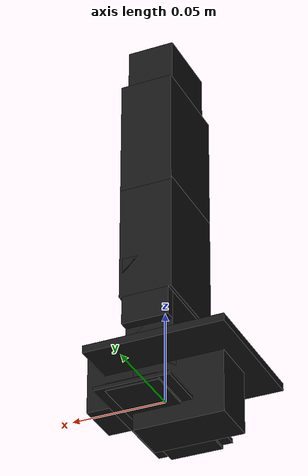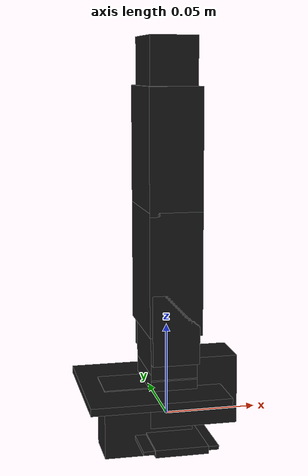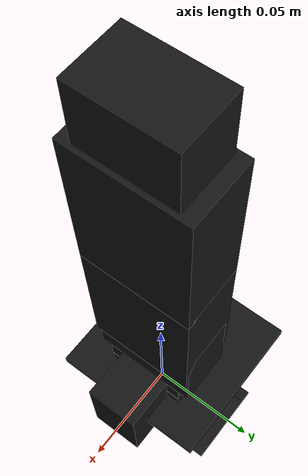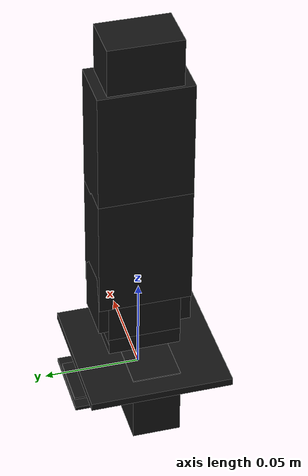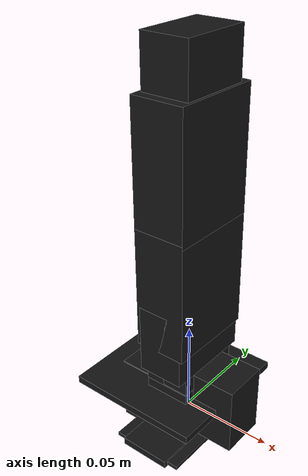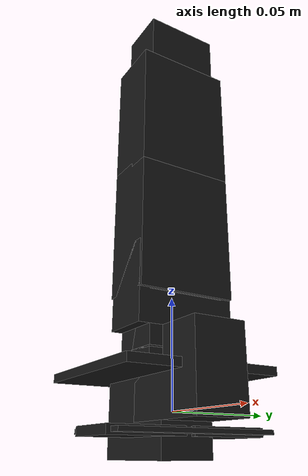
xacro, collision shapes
<?xml version="1.0"?>
<!-- Describe URDF for Turtlebot Arm -->
<robot name="turtlebot_arm" xmlns:xacro="http://ros.org/wiki/xacro">

    <!-- We can configure joints velocity limit and lower/upper limits
         to allow access to different operational areas, e.g. left handed vs. right handed robot -->
    <xacro:property name="joints_vlimit" value="1.571"/>
    <xacro:property name="pan_llimit" value="-2.617"/>
    <xacro:property name="pan_ulimit" value="2.617"/>
    <xacro:property name="shoulder_llimit" value="-2.617"/>
    <xacro:property name="shoulder_ulimit" value="2.617"/>
    <xacro:property name="elbow_llimit" value="-2.617"/>
    <xacro:property name="elbow_ulimit" value="2.617"/>
    <xacro:property name="wrist_llimit" value="-1.745"/>
    <xacro:property name="wrist_ulimit" value="1.745"/>

    <xacro:arg name="phantom_x_100" default="true"/>
    <xacro:property name="phantom_x_100" value="$(arg phantom_x_100)"/>

    <!-- Included URDF Files -->
    <xacro:include filename="$(find phantom_description)/urdf/turtlebot_arm.xacro"/>

    <xacro:include filename="$(find phantom_control)/description/physical_phantom.ros2_control.xacro"/>

    <xacro:call macro="phantom_ros2_control" name="turtlebot_arm" prefix=""/>

    <!-- As we don't have here a turtlebot base, add a base_link link as its location reference -->
    <link name="base_link"/>
     <xacro:call macro="arm_mount" name="arm_mount" parent="base_link" color="Black">
          <origin xyz="0 0 0"/>
     </xacro:call>
    <!-- Turtlebot arm macro -->
    <xacro:call macro="turtlebot_arm" parent="arm_mount_link" color="Black" gripper_color="Black"
                    pincher_gripper="true" turtlebot_gripper="false" phantom_x_100="${phantom_x_100}">
      <!-- Place the "floating" arm at the location it should be if mounted on a turtlebot,
           as pick and place and other demos assume this location -->
      <origin xyz="0 0 0"/>
    </xacro:call>
</robot>

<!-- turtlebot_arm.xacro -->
<!-- Arm description for Turtlebot Arm and PhantomX Pincher arm -->
<robot xmlns:xacro="http://ros.org/wiki/xacro">
  <xacro:include filename="$(find phantom_description)/urdf/arm_hardware.xacro"/>

  <material name="White">
    <color rgba="0.87 0.90 0.87 1.0"/>
  </material>
  <material name="Black">
    <color rgba="0.08 0.08 0.08 1.0"/>
  </material>
  <material name="Gray">
    <color rgba="0.2 0.2 0.21 1.0"/>
  </material>
  <material name="Green">
    <color rgba="0.22 0.32 0.14 1.0"/>
  </material>

  <xacro:macro name="turtlebot_arm" params="parent color pincher_gripper turtlebot_gripper gripper_color phantom_x_100 *origin">
    <link name="arm_base_link"/>
    <joint name="arm_base_joint" type="fixed">
      <xacro:insert_block name="origin"/>
      <parent link="${parent}"/>
      <child link="arm_base_link"/>
    </joint>

    <!-- fake gripper_link joint gives us a free servo!
         this makes us 5DOF and saves you $44.90
         that's a lot of coin! -->
    <link name="gripper_link"/>
    <joint name="gripper_link_joint" type="revolute">
      <origin xyz="0 0 0.112" rpy="0 -1.57 0"/>
      <parent link="arm_wrist_flex_link"/>
      <child link="gripper_link"/>
      <limit effort="30" velocity="1" lower="-3.14" upper="3.14"/>
      <axis xyz="1 0 0"/>
    </joint>

    <!-- shoulder pan joint -->
    <xacro:call macro="dynamixel_AX12_fixed" parent="arm_base_link" name="arm_shoulder_pan_servo">
      <origin xyz="0 0 0" rpy="${M_PI/2} 0 ${M_PI/2}"/>
    </xacro:call>
    <xacro:call macro="bioloid_F3_revolute" parent="arm_shoulder_pan_servo_link" name="arm_shoulder_pan" color="${color}"
                         vlimit="${joints_vlimit}" llimit="${pan_llimit}" ulimit="${pan_ulimit}">
      <origin xyz="0 ${AX12_WIDTH/2} 0" rpy="${-M_PI/2} ${M_PI/2} ${M_PI}"/>
    </xacro:call>

    <!-- shoulder lift joint -->
    <xacro:call  macro="dynamixel_AX12_fixed" parent="arm_shoulder_pan_link" name="arm_shoulder_lift_servo">
      <origin xyz="0 0 ${-AX12_HEIGHT-F10_HEIGHT+0.001}" rpy="0 ${M_PI} 0"/>
    </xacro:call>
    <xacro:call macro="bioloid_F4_revolute" parent="arm_shoulder_lift_servo_link" name="arm_shoulder_lift" color="${color}"
                         vlimit="${joints_vlimit}" llimit="${shoulder_llimit}" ulimit="${shoulder_ulimit}">
      <origin xyz="0 0 0" rpy="0 0 0"/>
    </xacro:call>
    <xacro:call macro="bioloid_F10_fixed" parent="arm_shoulder_lift_link" name="arm_shoulder_F10_0" color="${color}">
      <origin xyz="0 0 ${F4_HEIGHT+F10_HEIGHT/2}" rpy="0 0 0"/>
    </xacro:call>
    <xacro:call macro="bioloid_F10_fixed" parent="arm_shoulder_F10_0_link" name="arm_shoulder_F10_1" color="${color}">
      <origin xyz="0 0 ${F10_HEIGHT}" rpy="0 0 0"/>
    </xacro:call>
    <xacro:call macro="bioloid_F10_fixed" parent="arm_shoulder_F10_1_link" name="arm_shoulder_F10_2" color="${color}">
      <origin xyz="0 0 ${F10_HEIGHT}" rpy="0 0 0"/>
    </xacro:call>
    <xacro:call  macro="bioloid_F3_fixed" parent="arm_shoulder_F10_2_link" name="arm_shoulder_F3_0" color="${color}">
      <origin xyz="0 0 ${F10_HEIGHT/2}" rpy="0 ${M_PI} 0"/>
    </xacro:call >

    <!-- elbow joint -->

      <xacro:call macro="dynamixel_AX12_fixed" parent="arm_shoulder_F3_0_link" name="arm_elbow_flex_servo">
      <xacro:if value="${phantom_x_100}">
        <origin xyz="0 0 ${-AX12_HEIGHT-F10_HEIGHT+0.001}" rpy="0 0 0"/>
      </xacro:if>
      <xacro:if value="${not phantom_x_100}">
        <origin xyz="0 0 ${-AX12_HEIGHT-F10_HEIGHT+0.001}" rpy="0 ${M_PI} 0"/>
      </xacro:if>

      </xacro:call >

    <xacro:call macro="bioloid_F4_revolute" parent="arm_elbow_flex_servo_link" name="arm_elbow_flex" color="${color}"
                         vlimit="${joints_vlimit}" llimit="${elbow_llimit}" ulimit="${elbow_ulimit}">
      <origin xyz="0 0 0" rpy="0 0 0"/>
    </xacro:call>
    <xacro:call macro="bioloid_F10_fixed" parent="arm_elbow_flex_link" name="arm_elbow_F10_0" color="${color}">
      <origin xyz="0 0 ${F4_HEIGHT+F10_HEIGHT/2}" rpy="0 0 0"/>
    </xacro:call>
    <xacro:call macro="bioloid_F10_fixed" parent="arm_elbow_F10_0_link" name="arm_elbow_F10_1" color="${color}">
      <origin xyz="0 0 ${F10_HEIGHT}" rpy="0 0 0"/>
    </xacro:call>
    <xacro:call macro="bioloid_F10_fixed" parent="arm_elbow_F10_1_link" name="arm_elbow_F10_2" color="${color}">
      <origin xyz="0 0 ${F10_HEIGHT}" rpy="0 0 0"/>
    </xacro:call>
    <xacro:call  macro="bioloid_F3_fixed" parent="arm_elbow_F10_2_link" name="arm_elbow_F3_0" color="${color}">
      <origin xyz="0 0 ${F10_HEIGHT/2}" rpy="0 ${M_PI} 0"/>
    </xacro:call >

    <!-- wrist joint -->
    <xacro:call macro="dynamixel_AX12_fixed" parent="arm_elbow_F3_0_link" name="arm_wrist_flex_servo">
      <origin xyz="0 0 ${-AX12_HEIGHT-F10_HEIGHT+0.001}" rpy="0 ${M_PI} 0"/>
    </xacro:call >
    <xacro:call  macro="bioloid_F2_revolute" parent="arm_wrist_flex_servo_link" name="arm_wrist_flex" color="${color}"
                         vlimit="${joints_vlimit}" llimit="${wrist_llimit}" ulimit="${wrist_ulimit}">
      <origin xyz="0 0 0" rpy="0 0 0"/>
    </xacro:call>

  <!-- gripper - Load either Turtlebot gripper or Pincher Gripper -->
  <xacro:if value="${pincher_gripper}">
  <xacro:include filename="$(find phantom_description)/urdf/pincher_gripper.xacro"/>
  </xacro:if>
  <xacro:if value="${turtlebot_gripper}">
  <xacro:include filename="$(find phantom_description)/urdf/turtlebot_gripper.xacro"/>
  </xacro:if>

  </xacro:macro>

</robot>

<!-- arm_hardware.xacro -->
<!-- Basic URDF components for Turtlebot Arm and PhantomX Pincher Arm-->
<robot xmlns:xacro="http://ros.org/wiki/xacro">
<xacro:property name="M_PI" value="3.14159"/>
<xacro:property name="M_SCALE" value="0.001"/>
<xacro:property name="D_SCALE" value="1"/>
<xacro:property name="F10_HEIGHT" value="${0.004 * D_SCALE}"/> <!-- 4 mm -->
<xacro:property name="F4_HEIGHT" value="${0.0525 * D_SCALE}"/> <!-- 52.5 mm -->
<xacro:property name="F3_HEIGHT" value="${0.09 * D_SCALE}"/> <!-- 90 mm -->
<xacro:property name="AX12_HEIGHT" value="${0.0385 * D_SCALE}"/> <!-- 38.5 mm -->
<xacro:property name="AX12_WIDTH" value="${0.038 * D_SCALE}"/> <!-- 38 mm -->
<xacro:property name="AX12_LENGTH" value="${0.050 * D_SCALE}"/> <!-- 50 mm -->
<xacro:property name="F2_HEIGHT" value="${0.0265 * D_SCALE}"/> <!-- 26.5 mm -->

  <xacro:property name="FACTOR_GRIPPER_TRANSL" value="0.01"/>
  <xacro:property name="OFFSET_GRIPPER_TRANSL" value="0.029"/>

  <xacro:macro name="arm_mount" params="parent name color *origin">
    <joint name="${name}_joint" type="fixed">
      <xacro:insert_block name="origin"/>
      <parent link="${parent}"/>
      <child link="${name}_link"/>
    </joint>

    <link name="${name}_link">
      <inertial>
        <mass value="0.018"/>
        <origin xyz="0 0 0"/>
        <inertia ixx="0.000001" ixy="0.0" ixz="0.0"
                 iyy="0.000001" iyz="0.0"
                 izz="0.000001"/>
      </inertial>

      <visual>
        <origin xyz="-0.028 -0.0493 0.014" rpy="0.0 0.0 -${M_PI/2}"/>
        <geometry>
          <mesh filename="package://phantom_description/meshes/mount.stl" scale="${M_SCALE} ${M_SCALE} ${M_SCALE}"/>
        </geometry>
        <material name="${color}"/>
      </visual>

      <collision>
        <origin xyz="-0.01 0.0 0.0165" rpy="0.0 0.0 0.0"/>
        <geometry>
          <box size="0.074 0.074 0.004"/>
        </geometry>
      </collision>
    </link>

    <gazebo reference="${name}_link">
      <material>Gazebo/${color}</material>
      <selfCollide>true</selfCollide>
      <gravity>true</gravity>
    </gazebo>
  </xacro:macro>

  <xacro:macro name="finger_fixed" params="parent name color *origin">
    <joint name="${name}_joint" type="fixed">
      <xacro:insert_block name="origin"/>
      <parent link="${parent}"/>
      <child link="${name}_link"/>
    </joint>

    <link name="${name}_link">
      <inertial>
        <mass value="0.015"/>
        <origin xyz="0 0 0"/>
        <inertia ixx="0.000001" ixy="0.0" ixz="0.0"
                 iyy="0.000001" iyz="0.0"
                 izz="0.000001"/>
      </inertial>

      <visual>
        <origin xyz=" 0 0 0 " rpy="0 0 0"/>
        <geometry>
          <mesh filename="package://phantom_description/meshes/turtlebot_finger.stl" scale="${M_SCALE} ${M_SCALE} ${M_SCALE}"/>
        </geometry>
        <material name="${color}"/>
      </visual>

      <collision>
        <origin xyz="0.02645 0.0 -0.00655" rpy="0 0 0"/>
        <geometry>
          <box size="0.0783 0.03801 0.0193"/>
        </geometry>
      </collision>
    </link>

    <gazebo reference="${name}_link">
      <material>Gazebo/${color}</material>
      <selfCollide>true</selfCollide>
      <gravity>true</gravity>
    </gazebo>
  </xacro:macro>

  <xacro:macro name="dynamixel_AX12_fixed" params="parent name *origin">
    <joint name="${name}_joint" type="fixed">
      <xacro:insert_block name="origin"/>
      <parent link="${parent}"/>
      <child link="${name}_link"/>
    </joint>

    <link name="${name}_link">
      <inertial>
        <mass value="0.055"/>
        <origin xyz="0 0 0"/>
        <inertia ixx="0.000017012" ixy="0.0" ixz="0.0"
                 iyy="0.000013258" iyz="0.0"
                 izz="0.000009483"/>
      </inertial>

      <visual>
        <origin xyz=" 0 0 0 " rpy="0 0 0"/>
        <geometry>
          <mesh filename="package://phantom_description/meshes/ax12_box.stl" scale="${M_SCALE} ${M_SCALE} ${M_SCALE}"/>
        </geometry>
        <material name="Black"/>
      </visual>

      <collision>
        <origin xyz="0.0 0.0 -0.01241" rpy="0 0 0"/>
        <geometry>
          <box size="0.025 0.038 0.04762"/>
        </geometry>
      </collision>
    </link>

    <gazebo reference="${name}_link">
      <material>Gazebo/Black</material>
      <selfCollide>true</selfCollide>
      <gravity>true</gravity>
    </gazebo>
  </xacro:macro>

  <xacro:macro name="bioloid_F10_fixed" params="parent name color *origin">
    <joint name="${name}_joint" type="fixed">
      <xacro:insert_block name="origin"/>
      <parent link="${parent}"/>
      <child link="${name}_link"/>
    </joint>

    <link name="${name}_link">
      <inertial>
        <mass value="0.004"/>
        <origin xyz="0 0 0"/>
        <inertia ixx="0.000001" ixy="0.0" ixz="0.0"
                 iyy="0.000001" iyz="0.0"
                 izz="0.000001"/>
      </inertial>

      <visual>
        <origin xyz=" 0 0 0 " rpy="0 0 0"/>
        <geometry>
          <mesh filename="package://phantom_description/meshes/F10.stl" scale="${M_SCALE} ${M_SCALE} ${M_SCALE}"/>
        </geometry>
        <material name="${color}"/>
      </visual>

      <collision>
        <origin xyz="0.0 0.0 0.0" rpy="0 0 0"/>
        <geometry>
          <box size="0.025 0.038 0.004"/>
        </geometry>
      </collision>
    </link>

    <gazebo reference="${name}_link">
      <material>Gazebo/${color}</material>
      <selfCollide>true</selfCollide>
      <gravity>true</gravity>
    </gazebo>
  </xacro:macro>

  <xacro:macro name="bioloid_F3_fixed" params="parent name color *origin">
    <joint name="${name}_joint" type="fixed">
      <xacro:insert_block name="origin"/>
      <parent link="${parent}"/>
      <child link="${name}_link"/>
    </joint>

    <link name="${name}_link">
      <inertial>
        <mass value="0.005"/>
        <origin xyz="0 0 0"/>
        <inertia ixx="0.000001" ixy="0.0" ixz="0.0"
                 iyy="0.000001" iyz="0.0"
                 izz="0.000001"/>
      </inertial>

      <visual>
        <origin xyz=" 0 0 0 " rpy="0 0 0"/>
        <geometry>
          <mesh filename="package://phantom_description/meshes/F3.stl" scale="${M_SCALE} ${M_SCALE} ${M_SCALE}"/>
        </geometry>
        <material name="${color}"/>
      </visual>

      <collision>
        <origin xyz="0.0 0.0 -0.0045" rpy="0 0 0"/>
        <geometry>
          <box size="0.025 0.038 0.009"/>
        </geometry>
      </collision>
    </link>

    <gazebo reference="${name}_link">
      <material>Gazebo/${color}</material>
      <selfCollide>true</selfCollide>
      <gravity>true</gravity>
    </gazebo>
  </xacro:macro>

  <xacro:macro name="bioloid_F3_revolute" params="parent name color llimit ulimit vlimit *origin">
    <joint name="${name}_joint" type="revolute">
      <xacro:insert_block name="origin"/>
      <axis xyz="0 0 -1"/>
      <limit effort="30" velocity="${vlimit}" lower="${llimit}" upper="${ulimit}"/>
      <dynamics friction="0.13"/>
      <parent link="${parent}"/>
      <child link="${name}_link"/>
    </joint>

    <link name="${name}_link">
      <inertial>
        <mass value="0.008"/>
        <origin xyz="0 0 0"/>
        <inertia ixx="0.000001" ixy="0.0" ixz="0.0"
                 iyy="0.000001" iyz="0.0"
                 izz="0.000001"/>
      </inertial>

      <visual>
        <origin xyz=" 0 0 0 " rpy="0 0 0"/>
        <geometry>
          <mesh filename="package://phantom_description/meshes/F3.stl" scale="${M_SCALE} ${M_SCALE} ${M_SCALE}"/>
        </geometry>
        <material name="${color}"/>
      </visual>

      <collision>
        <origin xyz="0.0 0.0 -0.0045" rpy="0 0 0"/>
        <geometry>
          <box size="0.025 0.038 0.009"/>
        </geometry>
      </collision>
    </link>

    <gazebo reference="${name}_link">
      <material>Gazebo/${color}</material>
      <selfCollide>true</selfCollide>
      <gravity>true</gravity>
    </gazebo>
  </xacro:macro>

  <xacro:macro name="bioloid_F2_revolute" params="parent name color llimit ulimit vlimit *origin">
    <joint name="${name}_joint" type="revolute">
      <xacro:insert_block name="origin"/>
      <axis xyz="0 1 0"/>
      <limit effort="30" velocity="${vlimit}" lower="${llimit}" upper="${ulimit}"/>
      <dynamics friction="0.13"/>
      <parent link="${parent}"/>
      <child link="${name}_link"/>
    </joint>

    <link name="${name}_link">
      <inertial>
        <mass value="0.010"/>
        <origin xyz="0 0 0"/>
        <inertia ixx="0.000001" ixy="0.0" ixz="0.0"
                 iyy="0.000001" iyz="0.0"
                 izz="0.000001"/>
      </inertial>

      <visual>
        <origin xyz=" 0 0 0 " rpy="0 0 0"/>
        <geometry>
          <mesh filename="package://phantom_description/meshes/F2.stl" scale="${M_SCALE} ${M_SCALE} ${M_SCALE}"/>
        </geometry>
        <material name="${color}"/>
      </visual>

      <collision>
        <origin xyz="0.0 0.0 0.00775" rpy="0 0 0"/>
        <geometry>
          <box size="0.025 0.0485 0.0375"/>
        </geometry>
      </collision>
    </link>

    <gazebo reference="${name}_link">
      <material>Gazebo/${color}</material>
      <selfCollide>true</selfCollide>
      <gravity>true</gravity>
    </gazebo>
  </xacro:macro>

  <xacro:macro name="bioloid_F4_revolute" params="parent name color llimit ulimit vlimit *origin">
    <joint name="${name}_joint" type="revolute">
      <xacro:insert_block name="origin"/>
      <axis xyz="0 1 0"/>
      <limit effort="30" velocity="${vlimit}" lower="${llimit}" upper="${ulimit}"/>
      <dynamics friction="0.13"/>
      <parent link="${parent}"/>
      <child link="${name}_link"/>
    </joint>

    <link name="${name}_link">
      <inertial>
        <mass value="0.016"/>
        <origin xyz="0 0 0"/>
        <inertia ixx="0.000001" ixy="0.0" ixz="0.0"
                 iyy="0.000001" iyz="0.0"
                 izz="0.000001"/>
      </inertial>

      <visual>
        <origin xyz=" 0 0 0 " rpy="0 0 0"/>
        <geometry>
          <mesh filename="package://phantom_description/meshes/F4.stl" scale="${M_SCALE} ${M_SCALE} ${M_SCALE}"/>
        </geometry>
        <material name="${color}"/>
      </visual>

      <collision>
        <origin xyz="0.0 0.0 0.0215" rpy="0 0 0"/>
        <geometry>
          <box size="0.028 0.0485 0.065"/>
        </geometry>
      </collision>
    </link>

    <gazebo reference="${name}_link">
      <material>Gazebo/${color}</material>
      <selfCollide>true</selfCollide>
      <gravity>true</gravity>
    </gazebo>
  </xacro:macro>

  <xacro:macro name="gripper_finger_base" params="parent name color *origin">
    <joint name="${name}_joint" type="fixed">
      <xacro:insert_block name="origin"/>
      <parent link="${parent}"/>
      <child link="${name}_link"/>
    </joint>

    <link name="${name}_link">
      <inertial>
        <mass value="0.00001"/>
        <origin xyz="0 0 0"/>
        <inertia ixx="1.0" ixy="0.0" ixz="0.0"
          iyy="1.0" iyz="0.0"
          izz="1.0"/>
      </inertial>
      <visual>
        <origin xyz="0.016 0 -.015 " rpy="${M_PI} ${-M_PI/2} ${M_PI/2}"/>
        <geometry>
          <mesh filename="package://phantom_description/meshes/pincher_finger_base.stl" scale=".01 .01 .01"/>
        </geometry>
        <material name="${color}"/>
      </visual>

      <collision>
        <origin xyz="0.015 0 -0.0135" rpy="0 0 0"/>
        <geometry>
          <box size="0.002 0.040 0.075"/>
        </geometry>
      </collision>
    </link >

    <gazebo reference="${name}_link">
      <material>Gazebo/${color}</material>
      <selfCollide>true</selfCollide>
      <gravity>true</gravity>
    </gazebo>
  </xacro:macro>

    <xacro:macro name="pincher_gripper" params="name color *origin">
      <link name="${name}_link">
      <inertial>
        <mass value="0.00001"/>
        <origin xyz="0 0 0"/>
        <inertia ixx="1.0" ixy="0.0" ixz="0.0"
          iyy="1.0" iyz="0.0"
          izz="1.0"/>
      </inertial>
      <visual>
        <xacro:insert_block name="origin"/>
        <geometry>
          <mesh filename="package://phantom_description/meshes/pincher_finger.stl" scale=".01 .01 .01"/>
        </geometry>
        <material name="${color}"/>
      </visual>
      <collision>
        <xacro:insert_block name="origin"/>
        <geometry>
          <box size="0.036 0.028 0.004"/>
        </geometry>
      </collision>
    </link>

      <gazebo reference="${name}_link">
      <material>Gazebo/${color}</material>
      <selfCollide>true</selfCollide>
      <gravity>true</gravity>
    </gazebo>
  </xacro:macro>
</robot>

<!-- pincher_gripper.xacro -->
<!-- PhantomX Pincher Arm gripper URDF-->
<robot xmlns:xacro="http://ros.org/wiki/xacro">
    <xacro:call macro="bioloid_F3_fixed" parent="arm_wrist_flex_link" name="arm_wrist_F3_0" color="${color}">
      <origin xyz="0 0 ${F2_HEIGHT}" rpy="0 ${M_PI} ${-M_PI}"/>
    </xacro:call >

    <!-- gripper joint -->
    <xacro:call  macro="dynamixel_AX12_fixed" parent="arm_wrist_F3_0_link" name="gripper_servo" >
      <origin xyz="0 0 ${-AX12_WIDTH/2}" rpy="${M_PI/2} ${M_PI} ${M_PI/2}"/>
    </xacro:call >

     <xacro:call  macro="gripper_finger_base" parent="gripper_servo_link" name="gripper_finger_base" color="${color}">
      <origin xyz="0.015  ${AX12_WIDTH} 0" rpy="${M_PI/2} ${-M_PI} ${M_PI/2}"/>
    </xacro:call >

     <!-- Finger 1 -->
    <!-- Modifications by C. Roesmann: Instead of changing the arbotix driver to distinguish between a prismatic and a revolute joint, we do  the conversion here using a mimic. -->
    <joint name="gripper_joint" type="prismatic">
      <origin xyz="0 0 0" rpy="0 0 0"/>
      <axis xyz="1 0 0"/>
      <limit effort="30" velocity="0.5" lower="-0.8" upper="0.8"/> <!--lower="0.002" upper="0.031"-->
      <parent link="gripper_servo_link"/>
      <child link="link_revolute_to_prismatic_virtual1"/>
    </joint>

    <link name="link_revolute_to_prismatic_virtual1"/>

    <joint name="gripper_joint_prismatic1" type="prismatic">
      <origin xyz="0 0 0" rpy="0 0 0"/>
      <axis xyz="1 0 0"/>
      <limit effort="30" velocity="0.5" lower="-1" upper="1"/>
      <parent link="gripper_servo_link"/>
      <child link="gripper_active_link"/>
      <mimic joint="gripper_joint" multiplier="${FACTOR_GRIPPER_TRANSL}"  offset = "${OFFSET_GRIPPER_TRANSL}"/>
    </joint>

    <xacro:call macro="pincher_gripper" name="gripper_active" color="${color}" >
      <origin xyz="-0.02 0.023 0" rpy="${-M_PI/2} 0 0"/>
    </xacro:call>

    <!-- Finger 2 -->
    <!-- Note: currently static but should be a Mimic of Finger 1 -->

    <xacro:call macro="pincher_gripper" name="gripper_active2" color="${color}" >
      <origin xyz="0.02 0.023 0" rpy="${-M_PI/2} ${M_PI} 0"/>
    </xacro:call>

    <!-- Using Mimic -->
    <!-- gripper 2 joint -->

    <!-- Changes by C. Roesmann -->
    <joint name="gripper2_joint" type="prismatic">
      <origin xyz="0 0 0" rpy="0 0 0"/>
      <axis xyz="1 0 0"/>
      <limit effort="30" velocity="0.5" lower="-10" upper="10"/>
      <parent link="gripper_servo_link"/>
      <child link="gripper_active2_link"/>
      <mimic joint="gripper_joint" multiplier="-${FACTOR_GRIPPER_TRANSL}"  offset = "-${OFFSET_GRIPPER_TRANSL}"/>
    </joint>

</robot>
